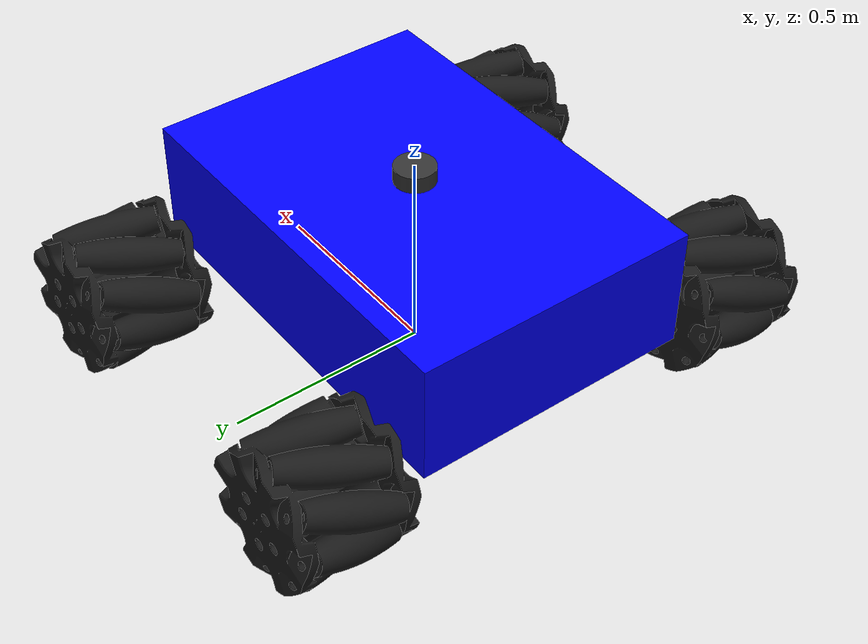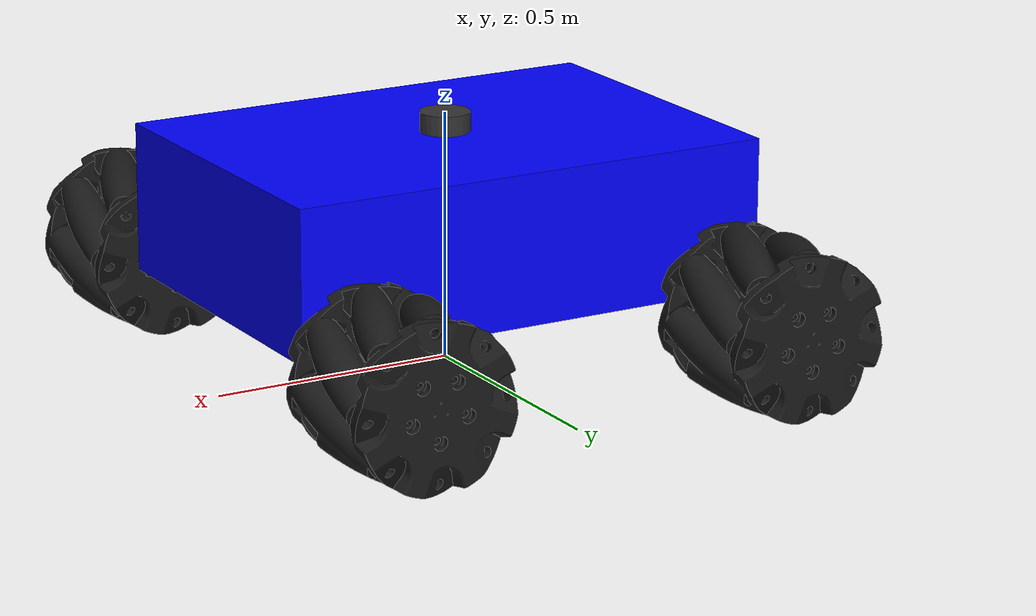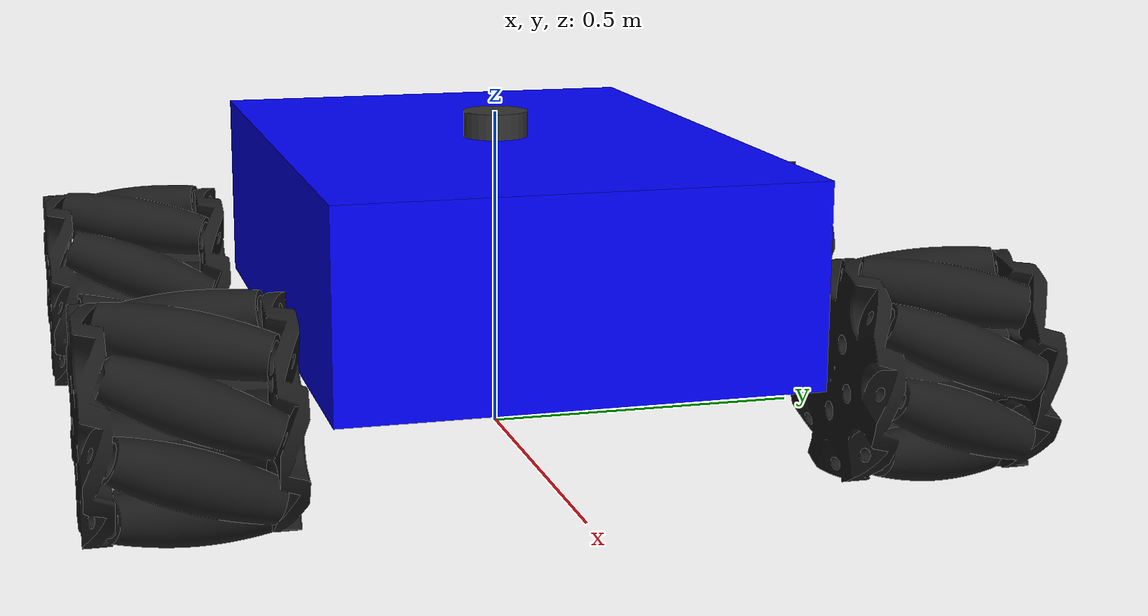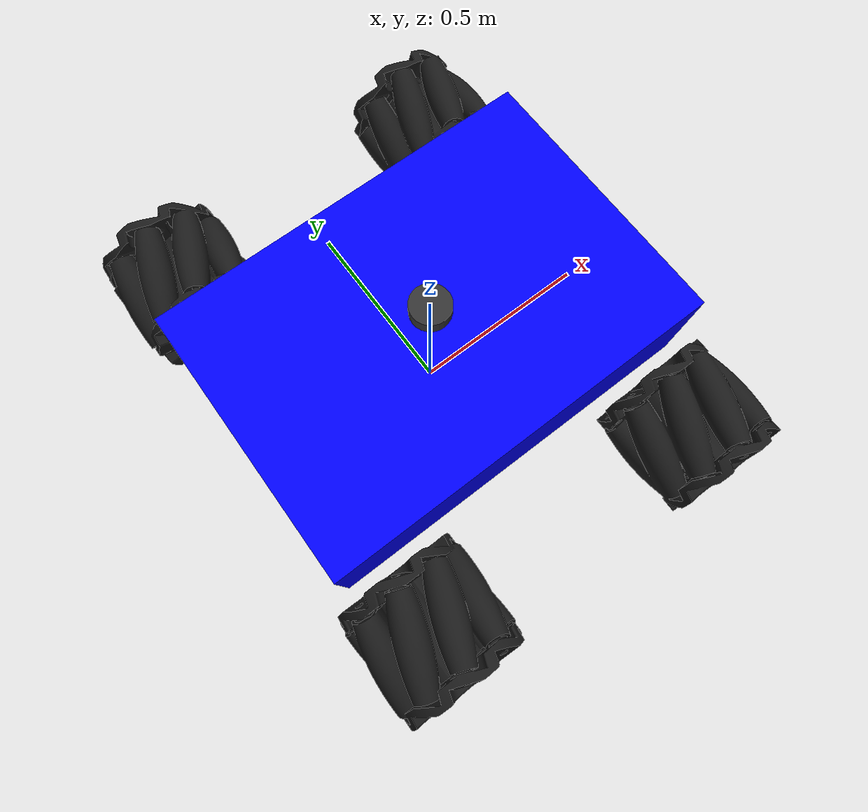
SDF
<?xml version="1.0" ?>
<sdf version="1.9">
  <model name="mecanum_robot" xmlns:gz="http://gazebosim.org/schema">

    <!-- ====== CHASSIS ====== -->
    <link name="base_footprint"/>

    <joint name="base_joint" type="fixed">
      <parent>base_footprint</parent>
      <child>base_link</child>
    </joint>

    <link name="base_link">
      <inertial>
        <pose>0 0 0.3125 0 0 0</pose>
        <mass>20.0</mass>
        <inertia>
          <ixx>1.0</ixx><iyy>1.0</iyy><izz>1.0</izz>
          <ixy>0</ixy><ixz>0</ixz><iyz>0</iyz>
        </inertia>
      </inertial>
      <visual name="visual">
        <pose>0 0 0.3125 0 0 0</pose>
        <geometry>
          <box><size>1.0 0.7 0.3</size></box>
        </geometry>
        <material>
          <ambient>0 0 1 1</ambient>
          <diffuse>0 0 1 1</diffuse>
        </material>
      </visual>
      <collision name="collision">
        <pose>0 0 0.3125 0 0 0</pose>
        <geometry>
          <box><size>1.0 0.7 0.3</size></box>
        </geometry>
      </collision>
    </link>

    <!-- ====== FRONT LEFT WHEEL ====== -->
    <link name="wheel_fl">
      <pose relative_to="base_link">0.40 0.54 0.1625 0 0 0</pose>
      <inertial>
        <mass>1.0</mass>
        <inertia>
          <ixx>0.00663</ixx><iyy>0.01320</iyy><izz>0.00663</izz>
          <ixy>0</ixy><ixz>0</ixz><iyz>0</iyz>
        </inertia>
      </inertial>
      <visual name="visual">
        <geometry>
          <mesh>
            <uri>model://mecanum_robot_description/meshes/mecanum_wheel_left.stl</uri>
            <scale>0.01 0.01 0.01</scale>
          </mesh>
        </geometry>
        <material>
          <ambient>0.1 0.1 0.1 1</ambient>
          <diffuse>0.1 0.1 0.1 1</diffuse>
        </material>
      </visual>
      <collision name="collision">
        <geometry>
          <sphere><radius>0.1625</radius></sphere>
        </geometry>
        <surface>
          <friction>
            <ode>
              <mu>1.0</mu>
              <mu2>0.0</mu2>
              <fdir1 gz:expressed_in="base_link">1 -1 0</fdir1>
            </ode>
          </friction>
        </surface>
      </collision>
    </link>
    <joint name="wheel_fl_joint" type="revolute">
      <parent>base_link</parent>
      <child>wheel_fl</child>
      <axis>
        <xyz>0 1 0</xyz>
        <limit>
          <lower>-1.79769e+308</lower>
          <upper>1.79769e+308</upper>
        </limit>
      </axis>
    </joint>

    <!-- ====== FRONT RIGHT WHEEL ====== -->
    <link name="wheel_fr">
      <pose relative_to="base_link">0.40 -0.54 0.1625 0 0 0</pose>
      <inertial>
        <mass>1.0</mass>
        <inertia>
          <ixx>0.00663</ixx><iyy>0.01320</iyy><izz>0.00663</izz>
          <ixy>0</ixy><ixz>0</ixz><iyz>0</iyz>
        </inertia>
      </inertial>
      <visual name="visual">
        <geometry>
          <mesh>
            <uri>model://mecanum_robot_description/meshes/mecanum_wheel_right.stl</uri>
            <scale>0.01 0.01 0.01</scale>
          </mesh>
        </geometry>
        <material>
          <ambient>0.1 0.1 0.1 1</ambient>
          <diffuse>0.1 0.1 0.1 1</diffuse>
        </material>
      </visual>
      <collision name="collision">
        <geometry>
          <sphere><radius>0.1625</radius></sphere>
        </geometry>
        <surface>
          <friction>
            <ode>
              <mu>1.0</mu>
              <mu2>0.0</mu2>
              <fdir1 gz:expressed_in="base_link">1 1 0</fdir1>
            </ode>
          </friction>
        </surface>
      </collision>
    </link>
    <joint name="wheel_fr_joint" type="revolute">
      <parent>base_link</parent>
      <child>wheel_fr</child>
      <axis>
        <xyz>0 1 0</xyz>
        <limit>
          <lower>-1.79769e+308</lower>
          <upper>1.79769e+308</upper>
        </limit>
      </axis>
    </joint>

    <!-- ====== REAR LEFT WHEEL ====== -->
    <link name="wheel_rl">
      <pose relative_to="base_link">-0.40 0.54 0.1625 0 0 0</pose>
      <inertial>
        <mass>1.0</mass>
        <inertia>
          <ixx>0.00663</ixx><iyy>0.01320</iyy><izz>0.00663</izz>
          <ixy>0</ixy><ixz>0</ixz><iyz>0</iyz>
        </inertia>
      </inertial>
      <visual name="visual">
        <geometry>
          <mesh>
            <uri>model://mecanum_robot_description/meshes/mecanum_wheel_right.stl</uri>
            <scale>0.01 0.01 0.01</scale>
          </mesh>
        </geometry>
        <material>
          <ambient>0.1 0.1 0.1 1</ambient>
          <diffuse>0.1 0.1 0.1 1</diffuse>
        </material>
      </visual>
      <collision name="collision">
        <geometry>
          <sphere><radius>0.1625</radius></sphere>
        </geometry>
        <surface>
          <friction>
            <ode>
              <mu>1.0</mu>
              <mu2>0.0</mu2>
              <fdir1 gz:expressed_in="base_link">1 1 0</fdir1>
            </ode>
          </friction>
        </surface>
      </collision>
    </link>
    <joint name="wheel_rl_joint" type="revolute">
      <parent>base_link</parent>
      <child>wheel_rl</child>
      <axis>
        <xyz>0 1 0</xyz>
        <limit>
          <lower>-1.79769e+308</lower>
          <upper>1.79769e+308</upper>
        </limit>
      </axis>
    </joint>

    <!-- ====== REAR RIGHT WHEEL ====== -->
    <link name="wheel_rr">
      <pose relative_to="base_link">-0.40 -0.54 0.1625 0 0 0</pose>
      <inertial>
        <mass>1.0</mass>
        <inertia>
          <ixx>0.00663</ixx><iyy>0.01320</iyy><izz>0.00663</izz>
          <ixy>0</ixy><ixz>0</ixz><iyz>0</iyz>
        </inertia>
      </inertial>
      <visual name="visual">
        <geometry>
          <mesh>
            <uri>model://mecanum_robot_description/meshes/mecanum_wheel_left.stl</uri>
            <scale>0.01 0.01 0.01</scale>
          </mesh>
        </geometry>
        <material>
          <ambient>0.1 0.1 0.1 1</ambient>
          <diffuse>0.1 0.1 0.1 1</diffuse>
        </material>
      </visual>
      <collision name="collision">
        <geometry>
          <sphere><radius>0.1625</radius></sphere>
        </geometry>
        <surface>
          <friction>
            <ode>
              <mu>1.0</mu>
              <mu2>0.0</mu2>
              <fdir1 gz:expressed_in="base_link">1 -1 0</fdir1>
            </ode>
          </friction>
        </surface>
      </collision>
    </link>
    <joint name="wheel_rr_joint" type="revolute">
      <parent>base_link</parent>
      <child>wheel_rr</child>
      <axis>
        <xyz>0 1 0</xyz>
        <limit>
          <lower>-1.79769e+308</lower>
          <upper>1.79769e+308</upper>
        </limit>
      </axis>
    </joint>

    <!-- ====== LIDAR ====== -->
    <link name="lidar_link">
      <pose relative_to="base_link">0 0 0.4825 0 0 0</pose>
      <inertial>
        <mass>0.2</mass>
        <inertia>
          <ixx>0.0001</ixx><iyy>0.0001</iyy><izz>0.0001</izz>
          <ixy>0</ixy><ixz>0</ixz><iyz>0</iyz>
        </inertia>
      </inertial>
      <visual name="visual">
        <geometry>
          <cylinder>
            <radius>0.05</radius>
            <length>0.04</length>
          </cylinder>
        </geometry>
        <material>
          <ambient>0.1 0.1 0.1 1</ambient>
          <diffuse>0.2 0.2 0.2 1</diffuse>
        </material>
      </visual>
      <collision name="collision">
        <geometry>
          <cylinder>
            <radius>0.05</radius>
            <length>0.04</length>
          </cylinder>
        </geometry>
      </collision>
      <sensor name="lidar" type="gpu_lidar">
        <always_on>true</always_on>
        <update_rate>10</update_rate>
        <topic>/scan</topic>
        <gz_frame_id>lidar_link</gz_frame_id>
        <lidar>
          <scan>
            <horizontal>
              <samples>640</samples>
              <resolution>1</resolution>
              <min_angle>-3.14159</min_angle>
              <max_angle>3.14159</max_angle>
            </horizontal>
            <vertical>
              <samples>1</samples>
              <resolution>1</resolution>
              <min_angle>0</min_angle>
              <max_angle>0</max_angle>
            </vertical>
          </scan>
          <range>
            <min>0.12</min>
            <max>12.0</max>
            <resolution>0.01</resolution>
          </range>
          <noise>
            <type>gaussian</type>
            <mean>0.0</mean>
            <stddev>0.01</stddev>
          </noise>
        </lidar>
        <visualize>true</visualize>
      </sensor>
    </link>
    <joint name="lidar_joint" type="fixed">
      <parent>base_link</parent>
      <child>lidar_link</child>
    </joint>

    <!-- ====== MECANUM DRIVE PLUGIN ====== -->
    <plugin filename="libgz-sim-mecanum-drive-system.so"
            name="gz::sim::systems::MecanumDrive">
      <front_left_joint>wheel_fl_joint</front_left_joint>
      <front_right_joint>wheel_fr_joint</front_right_joint>
      <back_left_joint>wheel_rl_joint</back_left_joint>
      <back_right_joint>wheel_rr_joint</back_right_joint>
      <wheel_separation>1.08</wheel_separation>
      <wheelbase>0.80</wheelbase>
      <wheel_radius>0.1625</wheel_radius>
      <topic>/cmd_vel</topic>
      <odom_topic>/odom</odom_topic>
      <tf_topic>/tf</tf_topic>
      <frame_id>odom</frame_id>
      <child_frame_id>base_footprint</child_frame_id>
      <odom_publish_frequency>30</odom_publish_frequency>
      <min_acceleration>-5</min_acceleration>
      <max_acceleration>5</max_acceleration>
    </plugin>

  </model>
</sdf>
